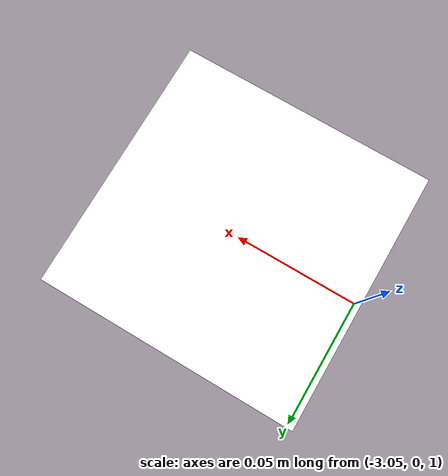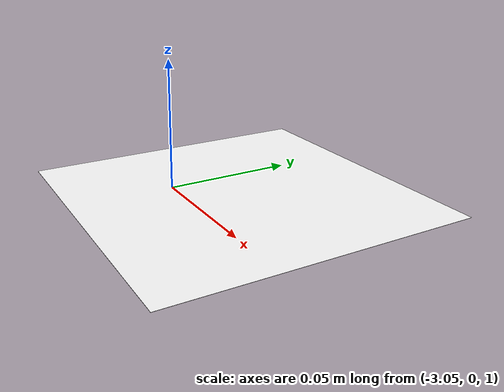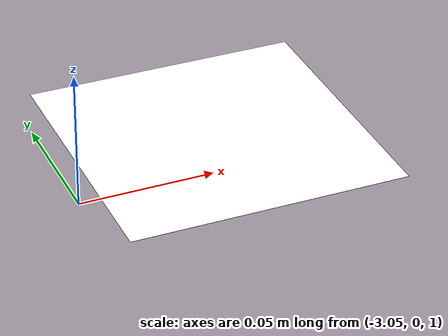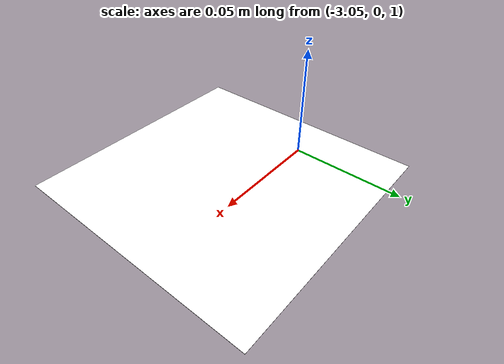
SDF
<?xml version="1.0" encoding="UTF-8"?>
<sdf version='1.9'>
  <model name='arucotag_301'>
    <static>true</static>
    <pose>-3 0 1.016 0 0 0</pose>
    <link name='base'>
      <visual name='base_visual'>
        <geometry>
          <plane>
            <normal>0 0 1</normal>
            <size>0.1 0.1</size>
          </plane>
        </geometry>
        <material>
          <diffuse>1 1 1 1</diffuse>
          <specular>0.4 0.4 0.4 1</specular>
          <pbr>
            <metal>
              <albedo_map>model://arucotag_301/arucotag_301.png</albedo_map>
            </metal>
          </pbr>
        </material>
      </visual>
    </link>
  </model>
</sdf>
